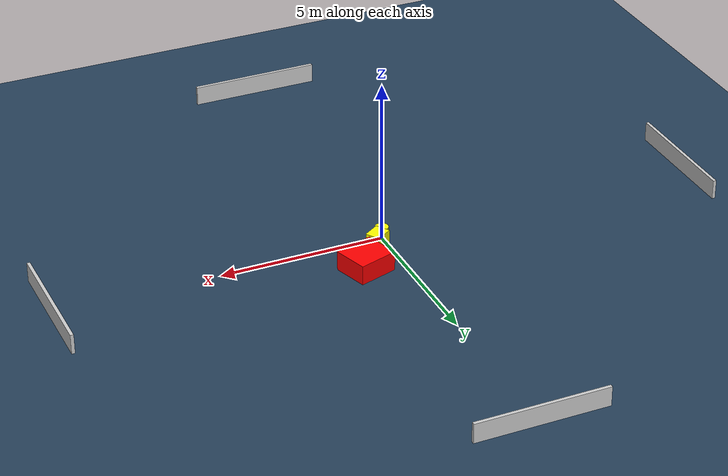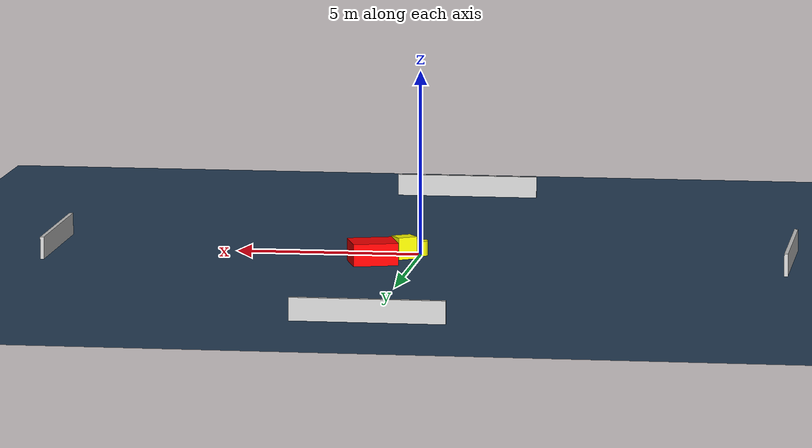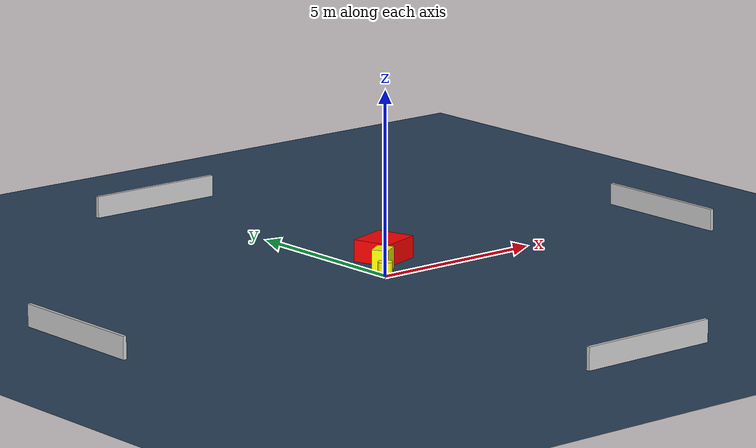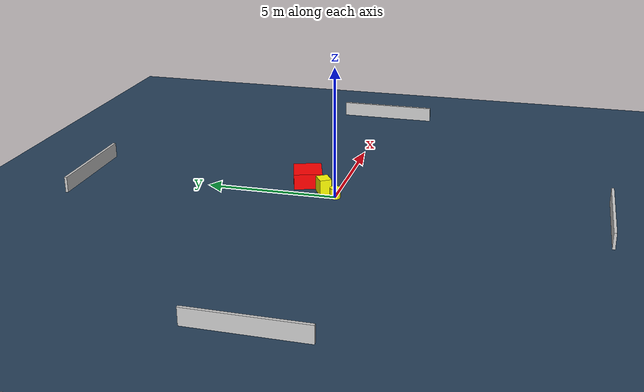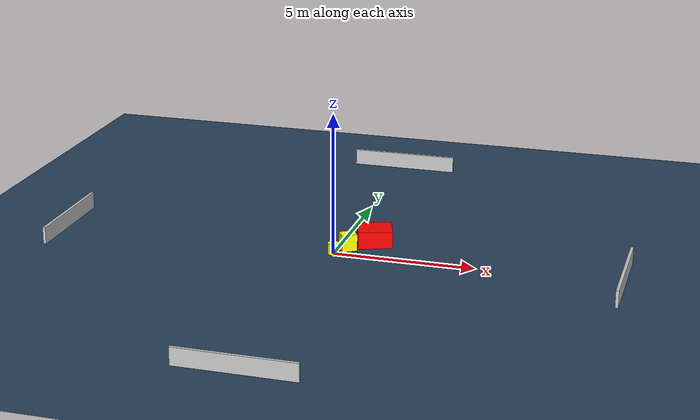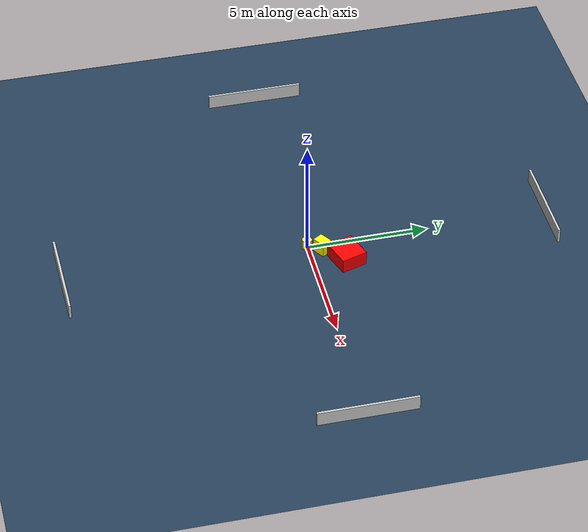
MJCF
<?xml version="1.0" ?>
<mujoco model="generated_environment">
  <option timestep="0.01" integrator="RK4" cone="elliptic"/>
  <default>
    <geom density="1"/>
  </default>
  <asset>
    <texture builtin="gradient" height="3072" name="skybox" rgb1="0.3 0.5 0.7" rgb2="0 0 0" type="skybox" width="512"/>
    <texture builtin="checker" height="300" name="groundplane" rgb1="0.2 0.3 0.4" rgb2="0.1 0.2 0.3" type="2d" width="300"/>
    <material name="groundplane" reflectance="0.2" texrepeat="5 5" texture="groundplane"/>
  </asset>
  <worldbody>
    <light dir="0 0 -1" directional="true" pos="0 0 1.5"/>
    <geom condim="3" friction="0.5 0.005 0.001" material="groundplane" name="floor" pos="0 0 0" size="0 0 0.05" type="plane"/>
    <body name="walls">
      <geom name="wall_1" condim="4" pos="-10.0 0.0 0.3" rgba="0.800000011920929 0.800000011920929 0.800000011920929 1.0" size="0.05 2.0 0.3" type="box"/>
      <geom name="wall_2" condim="4" pos="10.0 0.0 0.3" rgba="0.800000011920929 0.800000011920929 0.800000011920929 1.0" size="0.05 2.0 0.3" type="box"/>
      <geom name="wall_3" condim="4" pos="0.0 -10.0 0.3" rgba="0.800000011920929 0.800000011920929 0.800000011920929 1.0" size="2.0 0.05 0.3" type="box"/>
      <geom name="wall_4" condim="4" pos="0.0 10.0 0.3" rgba="0.800000011920929 0.800000011920929 0.800000011920929 1.0" size="2.0 0.05 0.3" type="box"/>
    </body>
    <body name="robot">
      <joint name="joint_x" type="slide" pos="0 0 0" axis="1 0 0"/>
      <joint name="joint_y" type="slide" pos="0 0 0" axis="0 1 0"/>
      <geom name="robot" type="cylinder" pos="0.0 0.0 0.2" size="0.2 0.2 0.0" mass="5.0" friction="1.0 0.005 0.0001" condim="4" rgba="1.0 1.0 0.0 1.0"/>
    </body>
    <body name="obstacle_1_movable">
      <geom name="obstacle_1_movable" condim="4" pos="0.37320142031219417 0.5384941966520805 0.3" euler="0 0 212.9919927437248" friction="0.0 0.005 0.001" rgba="1.0 1.0 0.0 1.0" size="0.27344481249075836 0.22740509876069437 0.3" type="box" mass="0.1"/>
      <joint type="free"/>
    </body>
    <body name="obstacle_2_static">
      <geom name="obstacle_2_static" condim="4" pos="1.11252316345688 1.3745965995035194 0.3" euler="0 0 17.508161986205838" friction="0.0 0.005 0.001" rgba="1.0 0.0 0.0 1.0" size="0.6082013330621597 0.5465545157477292 0.3" type="box"/>
    </body>
  </worldbody>
  <actuator>
    <motor name="actuator_x" joint="joint_x" gear="1" ctrlrange="-1 1"/>
    <motor name="actuator_y" joint="joint_y" gear="1" ctrlrange="-1 1"/>
  </actuator>
</mujoco>
